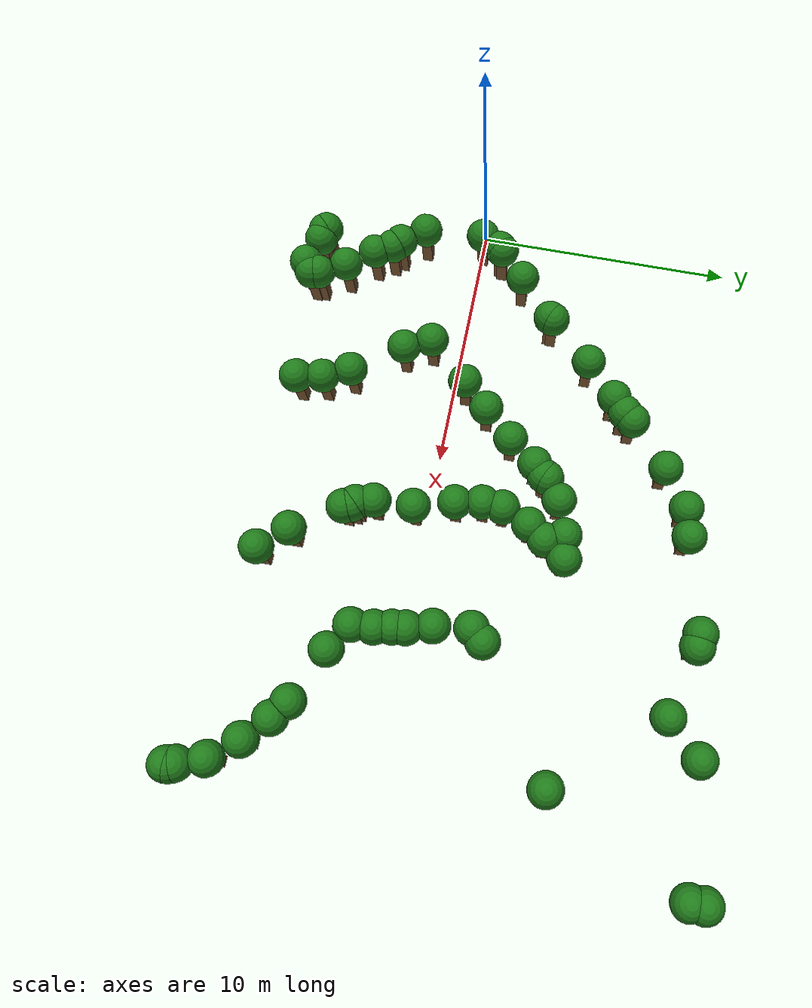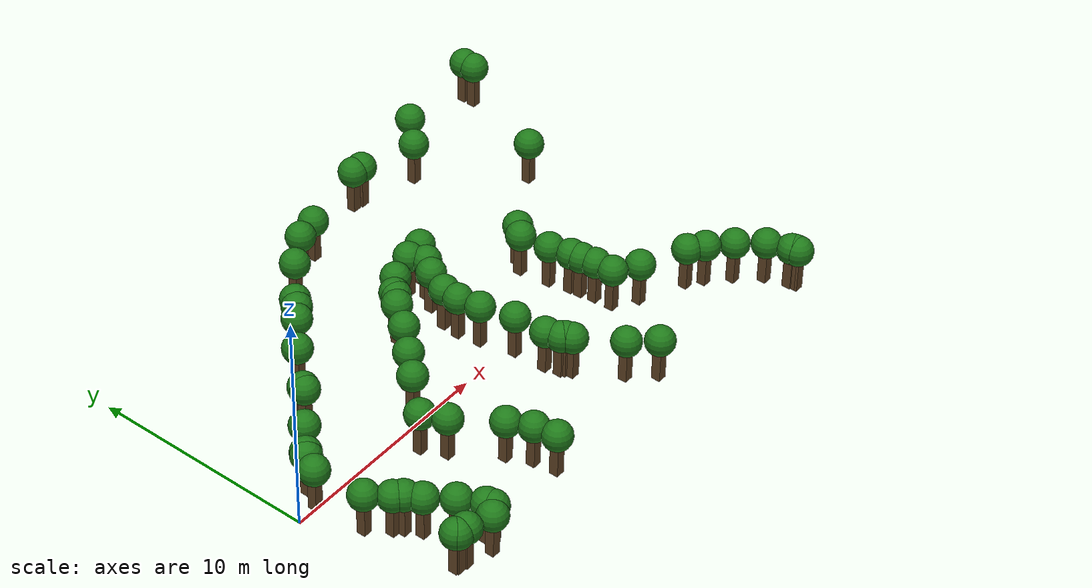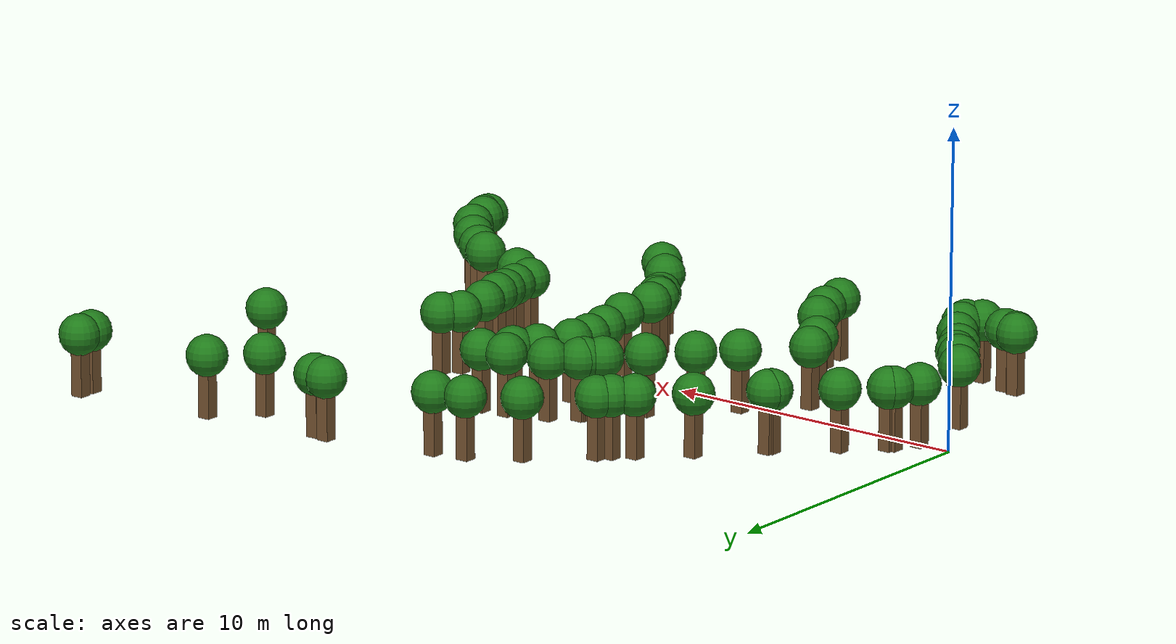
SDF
<sdf version="1.8">
 <model name="bush_trail_nav_walls">
  <static>true</static>
  <link name="trail_wall_141">
   <pose>24.194 11.701 0.750 0 0 0</pose>
   <collision name="c"><geometry><box><size>0.400 0.400 1.500</size></box></geometry></collision>
   <visual name="v">
    <geometry><box><size>0.400 0.400 1.500</size></box></geometry>
    <material><ambient>0.35 0.25 0.15 1</ambient><diffuse>0.45 0.32 0.18 1</diffuse></material>
   </visual>
   <visual name="leaves">
    <pose>0 0 1.200 0 0 0</pose>
    <geometry><sphere><radius>0.650</radius></sphere></geometry>
    <material><ambient>0.08 0.35 0.08 1</ambient><diffuse>0.12 0.48 0.10 1</diffuse></material>
   </visual>
  </link>
  <link name="trail_wall_145">
   <pose>24.194 11.173 0.750 0 0 0</pose>
   <collision name="c"><geometry><box><size>0.400 0.400 1.500</size></box></geometry></collision>
   <visual name="v">
    <geometry><box><size>0.400 0.400 1.500</size></box></geometry>
    <material><ambient>0.35 0.25 0.15 1</ambient><diffuse>0.45 0.32 0.18 1</diffuse></material>
   </visual>
   <visual name="leaves">
    <pose>0 0 1.200 0 0 0</pose>
    <geometry><sphere><radius>0.650</radius></sphere></geometry>
    <material><ambient>0.08 0.35 0.08 1</ambient><diffuse>0.12 0.48 0.10 1</diffuse></material>
   </visual>
  </link>
  <link name="trail_wall_146">
   <pose>19.677 10.997 0.750 0 0 0</pose>
   <collision name="c"><geometry><box><size>0.400 0.400 1.500</size></box></geometry></collision>
   <visual name="v">
    <geometry><box><size>0.400 0.400 1.500</size></box></geometry>
    <material><ambient>0.35 0.25 0.15 1</ambient><diffuse>0.45 0.32 0.18 1</diffuse></material>
   </visual>
   <visual name="leaves">
    <pose>0 0 1.200 0 0 0</pose>
    <geometry><sphere><radius>0.650</radius></sphere></geometry>
    <material><ambient>0.08 0.35 0.08 1</ambient><diffuse>0.12 0.48 0.10 1</diffuse></material>
   </visual>
  </link>
  <link name="trail_wall_149">
   <pose>15.396 10.528 0.750 0 0 0</pose>
   <collision name="c"><geometry><box><size>0.400 0.400 1.500</size></box></geometry></collision>
   <visual name="v">
    <geometry><box><size>0.400 0.400 1.500</size></box></geometry>
    <material><ambient>0.35 0.25 0.15 1</ambient><diffuse>0.45 0.32 0.18 1</diffuse></material>
   </visual>
   <visual name="leaves">
    <pose>0 0 1.200 0 0 0</pose>
    <geometry><sphere><radius>0.650</radius></sphere></geometry>
    <material><ambient>0.08 0.35 0.08 1</ambient><diffuse>0.12 0.48 0.10 1</diffuse></material>
   </visual>
  </link>
  <link name="trail_wall_150">
   <pose>15.865 10.469 0.750 0 0 0</pose>
   <collision name="c"><geometry><box><size>0.400 0.400 1.500</size></box></geometry></collision>
   <visual name="v">
    <geometry><box><size>0.400 0.400 1.500</size></box></geometry>
    <material><ambient>0.35 0.25 0.15 1</ambient><diffuse>0.45 0.32 0.18 1</diffuse></material>
   </visual>
   <visual name="leaves">
    <pose>0 0 1.200 0 0 0</pose>
    <geometry><sphere><radius>0.650</radius></sphere></geometry>
    <material><ambient>0.08 0.35 0.08 1</ambient><diffuse>0.12 0.48 0.10 1</diffuse></material>
   </visual>
  </link>
  <link name="trail_wall_162">
   <pose>18.446 9.765 0.750 0 0 0</pose>
   <collision name="c"><geometry><box><size>0.400 0.400 1.500</size></box></geometry></collision>
   <visual name="v">
    <geometry><box><size>0.400 0.400 1.500</size></box></geometry>
    <material><ambient>0.35 0.25 0.15 1</ambient><diffuse>0.45 0.32 0.18 1</diffuse></material>
   </visual>
   <visual name="leaves">
    <pose>0 0 1.200 0 0 0</pose>
    <geometry><sphere><radius>0.650</radius></sphere></geometry>
    <material><ambient>0.08 0.35 0.08 1</ambient><diffuse>0.12 0.48 0.10 1</diffuse></material>
   </visual>
  </link>
  <link name="trail_wall_163">
   <pose>11.935 9.707 0.750 0 0 0</pose>
   <collision name="c"><geometry><box><size>0.400 0.400 1.500</size></box></geometry></collision>
   <visual name="v">
    <geometry><box><size>0.400 0.400 1.500</size></box></geometry>
    <material><ambient>0.35 0.25 0.15 1</ambient><diffuse>0.45 0.32 0.18 1</diffuse></material>
   </visual>
   <visual name="leaves">
    <pose>0 0 1.200 0 0 0</pose>
    <geometry><sphere><radius>0.650</radius></sphere></geometry>
    <material><ambient>0.08 0.35 0.08 1</ambient><diffuse>0.12 0.48 0.10 1</diffuse></material>
   </visual>
  </link>
  <link name="trail_wall_168">
   <pose>10.880 9.472 0.750 0 0 0</pose>
   <collision name="c"><geometry><box><size>0.400 0.400 1.500</size></box></geometry></collision>
   <visual name="v">
    <geometry><box><size>0.400 0.400 1.500</size></box></geometry>
    <material><ambient>0.35 0.25 0.15 1</ambient><diffuse>0.45 0.32 0.18 1</diffuse></material>
   </visual>
   <visual name="leaves">
    <pose>0 0 1.200 0 0 0</pose>
    <geometry><sphere><radius>0.650</radius></sphere></geometry>
    <material><ambient>0.08 0.35 0.08 1</ambient><diffuse>0.12 0.48 0.10 1</diffuse></material>
   </visual>
  </link>
  <link name="trail_wall_177">
   <pose>9.472 8.534 0.750 0 0 0</pose>
   <collision name="c"><geometry><box><size>0.400 0.400 1.500</size></box></geometry></collision>
   <visual name="v">
    <geometry><box><size>0.400 0.400 1.500</size></box></geometry>
    <material><ambient>0.35 0.25 0.15 1</ambient><diffuse>0.45 0.32 0.18 1</diffuse></material>
   </visual>
   <visual name="leaves">
    <pose>0 0 1.200 0 0 0</pose>
    <geometry><sphere><radius>0.650</radius></sphere></geometry>
    <material><ambient>0.08 0.35 0.08 1</ambient><diffuse>0.12 0.48 0.10 1</diffuse></material>
   </visual>
  </link>
  <link name="trail_wall_184">
   <pose>7.830 7.067 0.750 0 0 0</pose>
   <collision name="c"><geometry><box><size>0.400 0.400 1.500</size></box></geometry></collision>
   <visual name="v">
    <geometry><box><size>0.400 0.400 1.500</size></box></geometry>
    <material><ambient>0.35 0.25 0.15 1</ambient><diffuse>0.45 0.32 0.18 1</diffuse></material>
   </visual>
   <visual name="leaves">
    <pose>0 0 1.200 0 0 0</pose>
    <geometry><sphere><radius>0.650</radius></sphere></geometry>
    <material><ambient>0.08 0.35 0.08 1</ambient><diffuse>0.12 0.48 0.10 1</diffuse></material>
   </visual>
  </link>
  <link name="trail_wall_188">
   <pose>7.537 6.716 0.750 0 0 0</pose>
   <collision name="c"><geometry><box><size>0.400 0.400 1.500</size></box></geometry></collision>
   <visual name="v">
    <geometry><box><size>0.400 0.400 1.500</size></box></geometry>
    <material><ambient>0.35 0.25 0.15 1</ambient><diffuse>0.45 0.32 0.18 1</diffuse></material>
   </visual>
   <visual name="leaves">
    <pose>0 0 1.200 0 0 0</pose>
    <geometry><sphere><radius>0.650</radius></sphere></geometry>
    <material><ambient>0.08 0.35 0.08 1</ambient><diffuse>0.12 0.48 0.10 1</diffuse></material>
   </visual>
  </link>
  <link name="trail_wall_190">
   <pose>7.009 6.246 0.750 0 0 0</pose>
   <collision name="c"><geometry><box><size>0.400 0.400 1.500</size></box></geometry></collision>
   <visual name="v">
    <geometry><box><size>0.400 0.400 1.500</size></box></geometry>
    <material><ambient>0.35 0.25 0.15 1</ambient><diffuse>0.45 0.32 0.18 1</diffuse></material>
   </visual>
   <visual name="leaves">
    <pose>0 0 1.200 0 0 0</pose>
    <geometry><sphere><radius>0.650</radius></sphere></geometry>
    <material><ambient>0.08 0.35 0.08 1</ambient><diffuse>0.12 0.48 0.10 1</diffuse></material>
   </visual>
  </link>
  <link name="trail_wall_191">
   <pose>21.554 6.012 0.750 0 0 0</pose>
   <collision name="c"><geometry><box><size>0.400 0.400 1.500</size></box></geometry></collision>
   <visual name="v">
    <geometry><box><size>0.400 0.400 1.500</size></box></geometry>
    <material><ambient>0.35 0.25 0.15 1</ambient><diffuse>0.45 0.32 0.18 1</diffuse></material>
   </visual>
   <visual name="leaves">
    <pose>0 0 1.200 0 0 0</pose>
    <geometry><sphere><radius>0.650</radius></sphere></geometry>
    <material><ambient>0.08 0.35 0.08 1</ambient><diffuse>0.12 0.48 0.10 1</diffuse></material>
   </visual>
  </link>
  <link name="trail_wall_194">
   <pose>13.578 5.367 0.750 0 0 0</pose>
   <collision name="c"><geometry><box><size>0.400 0.400 1.500</size></box></geometry></collision>
   <visual name="v">
    <geometry><box><size>0.400 0.400 1.500</size></box></geometry>
    <material><ambient>0.35 0.25 0.15 1</ambient><diffuse>0.45 0.32 0.18 1</diffuse></material>
   </visual>
   <visual name="leaves">
    <pose>0 0 1.200 0 0 0</pose>
    <geometry><sphere><radius>0.650</radius></sphere></geometry>
    <material><ambient>0.08 0.35 0.08 1</ambient><diffuse>0.12 0.48 0.10 1</diffuse></material>
   </visual>
  </link>
  <link name="trail_wall_195">
   <pose>12.698 5.249 0.750 0 0 0</pose>
   <collision name="c"><geometry><box><size>0.400 0.400 1.500</size></box></geometry></collision>
   <visual name="v">
    <geometry><box><size>0.400 0.400 1.500</size></box></geometry>
    <material><ambient>0.35 0.25 0.15 1</ambient><diffuse>0.45 0.32 0.18 1</diffuse></material>
   </visual>
   <visual name="leaves">
    <pose>0 0 1.200 0 0 0</pose>
    <geometry><sphere><radius>0.650</radius></sphere></geometry>
    <material><ambient>0.08 0.35 0.08 1</ambient><diffuse>0.12 0.48 0.10 1</diffuse></material>
   </visual>
  </link>
  <link name="trail_wall_197">
   <pose>5.718 5.073 0.750 0 0 0</pose>
   <collision name="c"><geometry><box><size>0.400 0.400 1.500</size></box></geometry></collision>
   <visual name="v">
    <geometry><box><size>0.400 0.400 1.500</size></box></geometry>
    <material><ambient>0.35 0.25 0.15 1</ambient><diffuse>0.45 0.32 0.18 1</diffuse></material>
   </visual>
   <visual name="leaves">
    <pose>0 0 1.200 0 0 0</pose>
    <geometry><sphere><radius>0.650</radius></sphere></geometry>
    <material><ambient>0.08 0.35 0.08 1</ambient><diffuse>0.12 0.48 0.10 1</diffuse></material>
   </visual>
  </link>
  <link name="trail_wall_199">
   <pose>11.408 4.839 0.750 0 0 0</pose>
   <collision name="c"><geometry><box><size>0.400 0.400 1.500</size></box></geometry></collision>
   <visual name="v">
    <geometry><box><size>0.400 0.400 1.500</size></box></geometry>
    <material><ambient>0.35 0.25 0.15 1</ambient><diffuse>0.45 0.32 0.18 1</diffuse></material>
   </visual>
   <visual name="leaves">
    <pose>0 0 1.200 0 0 0</pose>
    <geometry><sphere><radius>0.650</radius></sphere></geometry>
    <material><ambient>0.08 0.35 0.08 1</ambient><diffuse>0.12 0.48 0.10 1</diffuse></material>
   </visual>
  </link>
  <link name="trail_wall_201">
   <pose>12.991 4.545 0.750 0 0 0</pose>
   <collision name="c"><geometry><box><size>0.400 0.400 1.500</size></box></geometry></collision>
   <visual name="v">
    <geometry><box><size>0.400 0.400 1.500</size></box></geometry>
    <material><ambient>0.35 0.25 0.15 1</ambient><diffuse>0.45 0.32 0.18 1</diffuse></material>
   </visual>
   <visual name="leaves">
    <pose>0 0 1.200 0 0 0</pose>
    <geometry><sphere><radius>0.650</radius></sphere></geometry>
    <material><ambient>0.08 0.35 0.08 1</ambient><diffuse>0.12 0.48 0.10 1</diffuse></material>
   </visual>
  </link>
  <link name="trail_wall_203">
   <pose>10.645 4.252 0.750 0 0 0</pose>
   <collision name="c"><geometry><box><size>0.400 0.400 1.500</size></box></geometry></collision>
   <visual name="v">
    <geometry><box><size>0.400 0.400 1.500</size></box></geometry>
    <material><ambient>0.35 0.25 0.15 1</ambient><diffuse>0.45 0.32 0.18 1</diffuse></material>
   </visual>
   <visual name="leaves">
    <pose>0 0 1.200 0 0 0</pose>
    <geometry><sphere><radius>0.650</radius></sphere></geometry>
    <material><ambient>0.08 0.35 0.08 1</ambient><diffuse>0.12 0.48 0.10 1</diffuse></material>
   </visual>
  </link>
  <link name="trail_wall_204">
   <pose>10.587 4.135 0.750 0 0 0</pose>
   <collision name="c"><geometry><box><size>0.400 0.400 1.500</size></box></geometry></collision>
   <visual name="v">
    <geometry><box><size>0.400 0.400 1.500</size></box></geometry>
    <material><ambient>0.35 0.25 0.15 1</ambient><diffuse>0.45 0.32 0.18 1</diffuse></material>
   </visual>
   <visual name="leaves">
    <pose>0 0 1.200 0 0 0</pose>
    <geometry><sphere><radius>0.650</radius></sphere></geometry>
    <material><ambient>0.08 0.35 0.08 1</ambient><diffuse>0.12 0.48 0.10 1</diffuse></material>
   </visual>
  </link>
  <link name="trail_wall_206">
   <pose>12.522 3.900 0.750 0 0 0</pose>
   <collision name="c"><geometry><box><size>0.400 0.400 1.500</size></box></geometry></collision>
   <visual name="v">
    <geometry><box><size>0.400 0.400 1.500</size></box></geometry>
    <material><ambient>0.35 0.25 0.15 1</ambient><diffuse>0.45 0.32 0.18 1</diffuse></material>
   </visual>
   <visual name="leaves">
    <pose>0 0 1.200 0 0 0</pose>
    <geometry><sphere><radius>0.650</radius></sphere></geometry>
    <material><ambient>0.08 0.35 0.08 1</ambient><diffuse>0.12 0.48 0.10 1</diffuse></material>
   </visual>
  </link>
  <link name="trail_wall_207">
   <pose>10.176 3.724 0.750 0 0 0</pose>
   <collision name="c"><geometry><box><size>0.400 0.400 1.500</size></box></geometry></collision>
   <visual name="v">
    <geometry><box><size>0.400 0.400 1.500</size></box></geometry>
    <material><ambient>0.35 0.25 0.15 1</ambient><diffuse>0.45 0.32 0.18 1</diffuse></material>
   </visual>
   <visual name="leaves">
    <pose>0 0 1.200 0 0 0</pose>
    <geometry><sphere><radius>0.650</radius></sphere></geometry>
    <material><ambient>0.08 0.35 0.08 1</ambient><diffuse>0.12 0.48 0.10 1</diffuse></material>
   </visual>
  </link>
  <link name="trail_wall_209">
   <pose>4.194 3.431 0.750 0 0 0</pose>
   <collision name="c"><geometry><box><size>0.400 0.400 1.500</size></box></geometry></collision>
   <visual name="v">
    <geometry><box><size>0.400 0.400 1.500</size></box></geometry>
    <material><ambient>0.35 0.25 0.15 1</ambient><diffuse>0.45 0.32 0.18 1</diffuse></material>
   </visual>
   <visual name="leaves">
    <pose>0 0 1.200 0 0 0</pose>
    <geometry><sphere><radius>0.650</radius></sphere></geometry>
    <material><ambient>0.08 0.35 0.08 1</ambient><diffuse>0.12 0.48 0.10 1</diffuse></material>
   </visual>
  </link>
  <link name="trail_wall_210">
   <pose>4.135 3.314 0.750 0 0 0</pose>
   <collision name="c"><geometry><box><size>0.400 0.400 1.500</size></box></geometry></collision>
   <visual name="v">
    <geometry><box><size>0.400 0.400 1.500</size></box></geometry>
    <material><ambient>0.35 0.25 0.15 1</ambient><diffuse>0.45 0.32 0.18 1</diffuse></material>
   </visual>
   <visual name="leaves">
    <pose>0 0 1.200 0 0 0</pose>
    <geometry><sphere><radius>0.650</radius></sphere></geometry>
    <material><ambient>0.08 0.35 0.08 1</ambient><diffuse>0.12 0.48 0.10 1</diffuse></material>
   </visual>
  </link>
  <link name="trail_wall_212">
   <pose>17.038 3.021 0.750 0 0 0</pose>
   <collision name="c"><geometry><box><size>0.400 0.400 1.500</size></box></geometry></collision>
   <visual name="v">
    <geometry><box><size>0.400 0.400 1.500</size></box></geometry>
    <material><ambient>0.35 0.25 0.15 1</ambient><diffuse>0.45 0.32 0.18 1</diffuse></material>
   </visual>
   <visual name="leaves">
    <pose>0 0 1.200 0 0 0</pose>
    <geometry><sphere><radius>0.650</radius></sphere></geometry>
    <material><ambient>0.08 0.35 0.08 1</ambient><diffuse>0.12 0.48 0.10 1</diffuse></material>
   </visual>
  </link>
  <link name="trail_wall_213">
   <pose>12.053 2.845 0.750 0 0 0</pose>
   <collision name="c"><geometry><box><size>0.400 0.400 1.500</size></box></geometry></collision>
   <visual name="v">
    <geometry><box><size>0.400 0.400 1.500</size></box></geometry>
    <material><ambient>0.35 0.25 0.15 1</ambient><diffuse>0.45 0.32 0.18 1</diffuse></material>
   </visual>
   <visual name="leaves">
    <pose>0 0 1.200 0 0 0</pose>
    <geometry><sphere><radius>0.650</radius></sphere></geometry>
    <material><ambient>0.08 0.35 0.08 1</ambient><diffuse>0.12 0.48 0.10 1</diffuse></material>
   </visual>
  </link>
  <link name="trail_wall_214">
   <pose>9.355 2.669 0.750 0 0 0</pose>
   <collision name="c"><geometry><box><size>0.400 0.400 1.500</size></box></geometry></collision>
   <visual name="v">
    <geometry><box><size>0.400 0.400 1.500</size></box></geometry>
    <material><ambient>0.35 0.25 0.15 1</ambient><diffuse>0.45 0.32 0.18 1</diffuse></material>
   </visual>
   <visual name="leaves">
    <pose>0 0 1.200 0 0 0</pose>
    <geometry><sphere><radius>0.650</radius></sphere></geometry>
    <material><ambient>0.08 0.35 0.08 1</ambient><diffuse>0.12 0.48 0.10 1</diffuse></material>
   </visual>
  </link>
  <link name="trail_wall_215">
   <pose>16.628 2.551 0.750 0 0 0</pose>
   <collision name="c"><geometry><box><size>0.400 0.400 1.500</size></box></geometry></collision>
   <visual name="v">
    <geometry><box><size>0.400 0.400 1.500</size></box></geometry>
    <material><ambient>0.35 0.25 0.15 1</ambient><diffuse>0.45 0.32 0.18 1</diffuse></material>
   </visual>
   <visual name="leaves">
    <pose>0 0 1.200 0 0 0</pose>
    <geometry><sphere><radius>0.650</radius></sphere></geometry>
    <material><ambient>0.08 0.35 0.08 1</ambient><diffuse>0.12 0.48 0.10 1</diffuse></material>
   </visual>
  </link>
  <link name="trail_wall_221">
   <pose>11.994 2.082 0.750 0 0 0</pose>
   <collision name="c"><geometry><box><size>0.400 0.400 1.500</size></box></geometry></collision>
   <visual name="v">
    <geometry><box><size>0.400 0.400 1.500</size></box></geometry>
    <material><ambient>0.35 0.25 0.15 1</ambient><diffuse>0.45 0.32 0.18 1</diffuse></material>
   </visual>
   <visual name="leaves">
    <pose>0 0 1.200 0 0 0</pose>
    <geometry><sphere><radius>0.650</radius></sphere></geometry>
    <material><ambient>0.08 0.35 0.08 1</ambient><diffuse>0.12 0.48 0.10 1</diffuse></material>
   </visual>
  </link>
  <link name="trail_wall_222">
   <pose>2.610 1.965 0.750 0 0 0</pose>
   <collision name="c"><geometry><box><size>0.400 0.400 1.500</size></box></geometry></collision>
   <visual name="v">
    <geometry><box><size>0.400 0.400 1.500</size></box></geometry>
    <material><ambient>0.35 0.25 0.15 1</ambient><diffuse>0.45 0.32 0.18 1</diffuse></material>
   </visual>
   <visual name="leaves">
    <pose>0 0 1.200 0 0 0</pose>
    <geometry><sphere><radius>0.650</radius></sphere></geometry>
    <material><ambient>0.08 0.35 0.08 1</ambient><diffuse>0.12 0.48 0.10 1</diffuse></material>
   </visual>
  </link>
  <link name="trail_wall_228">
   <pose>8.299 1.554 0.750 0 0 0</pose>
   <collision name="c"><geometry><box><size>0.400 0.400 1.500</size></box></geometry></collision>
   <visual name="v">
    <geometry><box><size>0.400 0.400 1.500</size></box></geometry>
    <material><ambient>0.35 0.25 0.15 1</ambient><diffuse>0.45 0.32 0.18 1</diffuse></material>
   </visual>
   <visual name="leaves">
    <pose>0 0 1.200 0 0 0</pose>
    <geometry><sphere><radius>0.650</radius></sphere></geometry>
    <material><ambient>0.08 0.35 0.08 1</ambient><diffuse>0.12 0.48 0.10 1</diffuse></material>
   </visual>
  </link>
  <link name="trail_wall_233">
   <pose>16.804 1.202 0.750 0 0 0</pose>
   <collision name="c"><geometry><box><size>0.400 0.400 1.500</size></box></geometry></collision>
   <visual name="v">
    <geometry><box><size>0.400 0.400 1.500</size></box></geometry>
    <material><ambient>0.35 0.25 0.15 1</ambient><diffuse>0.45 0.32 0.18 1</diffuse></material>
   </visual>
   <visual name="leaves">
    <pose>0 0 1.200 0 0 0</pose>
    <geometry><sphere><radius>0.650</radius></sphere></geometry>
    <material><ambient>0.08 0.35 0.08 1</ambient><diffuse>0.12 0.48 0.10 1</diffuse></material>
   </visual>
  </link>
  <link name="trail_wall_234">
   <pose>12.170 1.085 0.750 0 0 0</pose>
   <collision name="c"><geometry><box><size>0.400 0.400 1.500</size></box></geometry></collision>
   <visual name="v">
    <geometry><box><size>0.400 0.400 1.500</size></box></geometry>
    <material><ambient>0.35 0.25 0.15 1</ambient><diffuse>0.45 0.32 0.18 1</diffuse></material>
   </visual>
   <visual name="leaves">
    <pose>0 0 1.200 0 0 0</pose>
    <geometry><sphere><radius>0.650</radius></sphere></geometry>
    <material><ambient>0.08 0.35 0.08 1</ambient><diffuse>0.12 0.48 0.10 1</diffuse></material>
   </visual>
  </link>
  <link name="trail_wall_235">
   <pose>1.554 0.968 0.750 0 0 0</pose>
   <collision name="c"><geometry><box><size>0.400 0.400 1.500</size></box></geometry></collision>
   <visual name="v">
    <geometry><box><size>0.400 0.400 1.500</size></box></geometry>
    <material><ambient>0.35 0.25 0.15 1</ambient><diffuse>0.45 0.32 0.18 1</diffuse></material>
   </visual>
   <visual name="leaves">
    <pose>0 0 1.200 0 0 0</pose>
    <geometry><sphere><radius>0.650</radius></sphere></geometry>
    <material><ambient>0.08 0.35 0.08 1</ambient><diffuse>0.12 0.48 0.10 1</diffuse></material>
   </visual>
  </link>
  <link name="trail_wall_236">
   <pose>1.437 0.850 0.750 0 0 0</pose>
   <collision name="c"><geometry><box><size>0.400 0.400 1.500</size></box></geometry></collision>
   <visual name="v">
    <geometry><box><size>0.400 0.400 1.500</size></box></geometry>
    <material><ambient>0.35 0.25 0.15 1</ambient><diffuse>0.45 0.32 0.18 1</diffuse></material>
   </visual>
   <visual name="leaves">
    <pose>0 0 1.200 0 0 0</pose>
    <geometry><sphere><radius>0.650</radius></sphere></geometry>
    <material><ambient>0.08 0.35 0.08 1</ambient><diffuse>0.12 0.48 0.10 1</diffuse></material>
   </visual>
  </link>
  <link name="trail_wall_238">
   <pose>7.361 0.557 0.750 0 0 0</pose>
   <collision name="c"><geometry><box><size>0.400 0.400 1.500</size></box></geometry></collision>
   <visual name="v">
    <geometry><box><size>0.400 0.400 1.500</size></box></geometry>
    <material><ambient>0.35 0.25 0.15 1</ambient><diffuse>0.45 0.32 0.18 1</diffuse></material>
   </visual>
   <visual name="leaves">
    <pose>0 0 1.200 0 0 0</pose>
    <geometry><sphere><radius>0.650</radius></sphere></geometry>
    <material><ambient>0.08 0.35 0.08 1</ambient><diffuse>0.12 0.48 0.10 1</diffuse></material>
   </visual>
  </link>
  <link name="trail_wall_240">
   <pose>17.038 0.264 0.750 0 0 0</pose>
   <collision name="c"><geometry><box><size>0.400 0.400 1.500</size></box></geometry></collision>
   <visual name="v">
    <geometry><box><size>0.400 0.400 1.500</size></box></geometry>
    <material><ambient>0.35 0.25 0.15 1</ambient><diffuse>0.45 0.32 0.18 1</diffuse></material>
   </visual>
   <visual name="leaves">
    <pose>0 0 1.200 0 0 0</pose>
    <geometry><sphere><radius>0.650</radius></sphere></geometry>
    <material><ambient>0.08 0.35 0.08 1</ambient><diffuse>0.12 0.48 0.10 1</diffuse></material>
   </visual>
  </link>
  <link name="trail_wall_241">
   <pose>1.026 0.088 0.750 0 0 0</pose>
   <collision name="c"><geometry><box><size>0.400 0.400 1.500</size></box></geometry></collision>
   <visual name="v">
    <geometry><box><size>0.400 0.400 1.500</size></box></geometry>
    <material><ambient>0.35 0.25 0.15 1</ambient><diffuse>0.45 0.32 0.18 1</diffuse></material>
   </visual>
   <visual name="leaves">
    <pose>0 0 1.200 0 0 0</pose>
    <geometry><sphere><radius>0.650</radius></sphere></geometry>
    <material><ambient>0.08 0.35 0.08 1</ambient><diffuse>0.12 0.48 0.10 1</diffuse></material>
   </visual>
  </link>
  <link name="trail_wall_243">
   <pose>17.097 -0.205 0.750 0 0 0</pose>
   <collision name="c"><geometry><box><size>0.400 0.400 1.500</size></box></geometry></collision>
   <visual name="v">
    <geometry><box><size>0.400 0.400 1.500</size></box></geometry>
    <material><ambient>0.35 0.25 0.15 1</ambient><diffuse>0.45 0.32 0.18 1</diffuse></material>
   </visual>
   <visual name="leaves">
    <pose>0 0 1.200 0 0 0</pose>
    <geometry><sphere><radius>0.650</radius></sphere></geometry>
    <material><ambient>0.08 0.35 0.08 1</ambient><diffuse>0.12 0.48 0.10 1</diffuse></material>
   </visual>
  </link>
  <link name="trail_wall_244">
   <pose>12.581 -0.381 0.750 0 0 0</pose>
   <collision name="c"><geometry><box><size>0.400 0.400 1.500</size></box></geometry></collision>
   <visual name="v">
    <geometry><box><size>0.400 0.400 1.500</size></box></geometry>
    <material><ambient>0.35 0.25 0.15 1</ambient><diffuse>0.45 0.32 0.18 1</diffuse></material>
   </visual>
   <visual name="leaves">
    <pose>0 0 1.200 0 0 0</pose>
    <geometry><sphere><radius>0.650</radius></sphere></geometry>
    <material><ambient>0.08 0.35 0.08 1</ambient><diffuse>0.12 0.48 0.10 1</diffuse></material>
   </visual>
  </link>
  <link name="trail_wall_247">
   <pose>17.214 -0.850 0.750 0 0 0</pose>
   <collision name="c"><geometry><box><size>0.400 0.400 1.500</size></box></geometry></collision>
   <visual name="v">
    <geometry><box><size>0.400 0.400 1.500</size></box></geometry>
    <material><ambient>0.35 0.25 0.15 1</ambient><diffuse>0.45 0.32 0.18 1</diffuse></material>
   </visual>
   <visual name="leaves">
    <pose>0 0 1.200 0 0 0</pose>
    <geometry><sphere><radius>0.650</radius></sphere></geometry>
    <material><ambient>0.08 0.35 0.08 1</ambient><diffuse>0.12 0.48 0.10 1</diffuse></material>
   </visual>
  </link>
  <link name="trail_wall_248">
   <pose>5.894 -1.026 0.750 0 0 0</pose>
   <collision name="c"><geometry><box><size>0.400 0.400 1.500</size></box></geometry></collision>
   <visual name="v">
    <geometry><box><size>0.400 0.400 1.500</size></box></geometry>
    <material><ambient>0.35 0.25 0.15 1</ambient><diffuse>0.45 0.32 0.18 1</diffuse></material>
   </visual>
   <visual name="leaves">
    <pose>0 0 1.200 0 0 0</pose>
    <geometry><sphere><radius>0.650</radius></sphere></geometry>
    <material><ambient>0.08 0.35 0.08 1</ambient><diffuse>0.12 0.48 0.10 1</diffuse></material>
   </visual>
  </link>
  <link name="trail_wall_252">
   <pose>17.273 -1.672 0.750 0 0 0</pose>
   <collision name="c"><geometry><box><size>0.400 0.400 1.500</size></box></geometry></collision>
   <visual name="v">
    <geometry><box><size>0.400 0.400 1.500</size></box></geometry>
    <material><ambient>0.35 0.25 0.15 1</ambient><diffuse>0.45 0.32 0.18 1</diffuse></material>
   </visual>
   <visual name="leaves">
    <pose>0 0 1.200 0 0 0</pose>
    <geometry><sphere><radius>0.650</radius></sphere></geometry>
    <material><ambient>0.08 0.35 0.08 1</ambient><diffuse>0.12 0.48 0.10 1</diffuse></material>
   </visual>
  </link>
  <link name="trail_wall_253">
   <pose>12.639 -1.848 0.750 0 0 0</pose>
   <collision name="c"><geometry><box><size>0.400 0.400 1.500</size></box></geometry></collision>
   <visual name="v">
    <geometry><box><size>0.400 0.400 1.500</size></box></geometry>
    <material><ambient>0.35 0.25 0.15 1</ambient><diffuse>0.45 0.32 0.18 1</diffuse></material>
   </visual>
   <visual name="leaves">
    <pose>0 0 1.200 0 0 0</pose>
    <geometry><sphere><radius>0.650</radius></sphere></geometry>
    <material><ambient>0.08 0.35 0.08 1</ambient><diffuse>0.12 0.48 0.10 1</diffuse></material>
   </visual>
  </link>
  <link name="trail_wall_254">
   <pose>6.364 -2.023 0.750 0 0 0</pose>
   <collision name="c"><geometry><box><size>0.400 0.400 1.500</size></box></geometry></collision>
   <visual name="v">
    <geometry><box><size>0.400 0.400 1.500</size></box></geometry>
    <material><ambient>0.35 0.25 0.15 1</ambient><diffuse>0.45 0.32 0.18 1</diffuse></material>
   </visual>
   <visual name="leaves">
    <pose>0 0 1.200 0 0 0</pose>
    <geometry><sphere><radius>0.650</radius></sphere></geometry>
    <material><ambient>0.08 0.35 0.08 1</ambient><diffuse>0.12 0.48 0.10 1</diffuse></material>
   </visual>
  </link>
  <link name="trail_wall_255">
   <pose>1.202 -2.199 0.750 0 0 0</pose>
   <collision name="c"><geometry><box><size>0.400 0.400 1.500</size></box></geometry></collision>
   <visual name="v">
    <geometry><box><size>0.400 0.400 1.500</size></box></geometry>
    <material><ambient>0.35 0.25 0.15 1</ambient><diffuse>0.45 0.32 0.18 1</diffuse></material>
   </visual>
   <visual name="leaves">
    <pose>0 0 1.200 0 0 0</pose>
    <geometry><sphere><radius>0.650</radius></sphere></geometry>
    <material><ambient>0.08 0.35 0.08 1</ambient><diffuse>0.12 0.48 0.10 1</diffuse></material>
   </visual>
  </link>
  <link name="trail_wall_256">
   <pose>18.270 -2.317 0.750 0 0 0</pose>
   <collision name="c"><geometry><box><size>0.400 0.400 1.500</size></box></geometry></collision>
   <visual name="v">
    <geometry><box><size>0.400 0.400 1.500</size></box></geometry>
    <material><ambient>0.35 0.25 0.15 1</ambient><diffuse>0.45 0.32 0.18 1</diffuse></material>
   </visual>
   <visual name="leaves">
    <pose>0 0 1.200 0 0 0</pose>
    <geometry><sphere><radius>0.650</radius></sphere></geometry>
    <material><ambient>0.08 0.35 0.08 1</ambient><diffuse>0.12 0.48 0.10 1</diffuse></material>
   </visual>
  </link>
  <link name="trail_wall_258">
   <pose>12.815 -2.493 0.750 0 0 0</pose>
   <collision name="c"><geometry><box><size>0.400 0.400 1.500</size></box></geometry></collision>
   <visual name="v">
    <geometry><box><size>0.400 0.400 1.500</size></box></geometry>
    <material><ambient>0.35 0.25 0.15 1</ambient><diffuse>0.45 0.32 0.18 1</diffuse></material>
   </visual>
   <visual name="leaves">
    <pose>0 0 1.200 0 0 0</pose>
    <geometry><sphere><radius>0.650</radius></sphere></geometry>
    <material><ambient>0.08 0.35 0.08 1</ambient><diffuse>0.12 0.48 0.10 1</diffuse></material>
   </visual>
  </link>
  <link name="trail_wall_259">
   <pose>12.933 -2.610 0.750 0 0 0</pose>
   <collision name="c"><geometry><box><size>0.400 0.400 1.500</size></box></geometry></collision>
   <visual name="v">
    <geometry><box><size>0.400 0.400 1.500</size></box></geometry>
    <material><ambient>0.35 0.25 0.15 1</ambient><diffuse>0.45 0.32 0.18 1</diffuse></material>
   </visual>
   <visual name="leaves">
    <pose>0 0 1.200 0 0 0</pose>
    <geometry><sphere><radius>0.650</radius></sphere></geometry>
    <material><ambient>0.08 0.35 0.08 1</ambient><diffuse>0.12 0.48 0.10 1</diffuse></material>
   </visual>
  </link>
  <link name="trail_wall_261">
   <pose>13.050 -2.903 0.750 0 0 0</pose>
   <collision name="c"><geometry><box><size>0.400 0.400 1.500</size></box></geometry></collision>
   <visual name="v">
    <geometry><box><size>0.400 0.400 1.500</size></box></geometry>
    <material><ambient>0.35 0.25 0.15 1</ambient><diffuse>0.45 0.32 0.18 1</diffuse></material>
   </visual>
   <visual name="leaves">
    <pose>0 0 1.200 0 0 0</pose>
    <geometry><sphere><radius>0.650</radius></sphere></geometry>
    <material><ambient>0.08 0.35 0.08 1</ambient><diffuse>0.12 0.48 0.10 1</diffuse></material>
   </visual>
  </link>
  <link name="trail_wall_262">
   <pose>1.848 -3.079 0.750 0 0 0</pose>
   <collision name="c"><geometry><box><size>0.400 0.400 1.500</size></box></geometry></collision>
   <visual name="v">
    <geometry><box><size>0.400 0.400 1.500</size></box></geometry>
    <material><ambient>0.35 0.25 0.15 1</ambient><diffuse>0.45 0.32 0.18 1</diffuse></material>
   </visual>
   <visual name="leaves">
    <pose>0 0 1.200 0 0 0</pose>
    <geometry><sphere><radius>0.650</radius></sphere></geometry>
    <material><ambient>0.08 0.35 0.08 1</ambient><diffuse>0.12 0.48 0.10 1</diffuse></material>
   </visual>
  </link>
  <link name="trail_wall_263">
   <pose>20.264 -3.196 0.750 0 0 0</pose>
   <collision name="c"><geometry><box><size>0.400 0.400 1.500</size></box></geometry></collision>
   <visual name="v">
    <geometry><box><size>0.400 0.400 1.500</size></box></geometry>
    <material><ambient>0.35 0.25 0.15 1</ambient><diffuse>0.45 0.32 0.18 1</diffuse></material>
   </visual>
   <visual name="leaves">
    <pose>0 0 1.200 0 0 0</pose>
    <geometry><sphere><radius>0.650</radius></sphere></geometry>
    <material><ambient>0.08 0.35 0.08 1</ambient><diffuse>0.12 0.48 0.10 1</diffuse></material>
   </visual>
  </link>
  <link name="trail_wall_264">
   <pose>2.141 -3.372 0.750 0 0 0</pose>
   <collision name="c"><geometry><box><size>0.400 0.400 1.500</size></box></geometry></collision>
   <visual name="v">
    <geometry><box><size>0.400 0.400 1.500</size></box></geometry>
    <material><ambient>0.35 0.25 0.15 1</ambient><diffuse>0.45 0.32 0.18 1</diffuse></material>
   </visual>
   <visual name="leaves">
    <pose>0 0 1.200 0 0 0</pose>
    <geometry><sphere><radius>0.650</radius></sphere></geometry>
    <material><ambient>0.08 0.35 0.08 1</ambient><diffuse>0.12 0.48 0.10 1</diffuse></material>
   </visual>
  </link>
  <link name="trail_wall_266">
   <pose>20.909 -3.666 0.750 0 0 0</pose>
   <collision name="c"><geometry><box><size>0.400 0.400 1.500</size></box></geometry></collision>
   <visual name="v">
    <geometry><box><size>0.400 0.400 1.500</size></box></geometry>
    <material><ambient>0.35 0.25 0.15 1</ambient><diffuse>0.45 0.32 0.18 1</diffuse></material>
   </visual>
   <visual name="leaves">
    <pose>0 0 1.200 0 0 0</pose>
    <geometry><sphere><radius>0.650</radius></sphere></geometry>
    <material><ambient>0.08 0.35 0.08 1</ambient><diffuse>0.12 0.48 0.10 1</diffuse></material>
   </visual>
  </link>
  <link name="trail_wall_267">
   <pose>7.654 -3.842 0.750 0 0 0</pose>
   <collision name="c"><geometry><box><size>0.400 0.400 1.500</size></box></geometry></collision>
   <visual name="v">
    <geometry><box><size>0.400 0.400 1.500</size></box></geometry>
    <material><ambient>0.35 0.25 0.15 1</ambient><diffuse>0.45 0.32 0.18 1</diffuse></material>
   </visual>
   <visual name="leaves">
    <pose>0 0 1.200 0 0 0</pose>
    <geometry><sphere><radius>0.650</radius></sphere></geometry>
    <material><ambient>0.08 0.35 0.08 1</ambient><diffuse>0.12 0.48 0.10 1</diffuse></material>
   </visual>
  </link>
  <link name="trail_wall_268">
   <pose>2.493 -4.018 0.750 0 0 0</pose>
   <collision name="c"><geometry><box><size>0.400 0.400 1.500</size></box></geometry></collision>
   <visual name="v">
    <geometry><box><size>0.400 0.400 1.500</size></box></geometry>
    <material><ambient>0.35 0.25 0.15 1</ambient><diffuse>0.45 0.32 0.18 1</diffuse></material>
   </visual>
   <visual name="leaves">
    <pose>0 0 1.200 0 0 0</pose>
    <geometry><sphere><radius>0.650</radius></sphere></geometry>
    <material><ambient>0.08 0.35 0.08 1</ambient><diffuse>0.12 0.48 0.10 1</diffuse></material>
   </visual>
  </link>
  <link name="trail_wall_271">
   <pose>21.789 -4.487 0.750 0 0 0</pose>
   <collision name="c"><geometry><box><size>0.400 0.400 1.500</size></box></geometry></collision>
   <visual name="v">
    <geometry><box><size>0.400 0.400 1.500</size></box></geometry>
    <material><ambient>0.35 0.25 0.15 1</ambient><diffuse>0.45 0.32 0.18 1</diffuse></material>
   </visual>
   <visual name="leaves">
    <pose>0 0 1.200 0 0 0</pose>
    <geometry><sphere><radius>0.650</radius></sphere></geometry>
    <material><ambient>0.08 0.35 0.08 1</ambient><diffuse>0.12 0.48 0.10 1</diffuse></material>
   </visual>
  </link>
  <link name="trail_wall_272">
   <pose>14.223 -4.663 0.750 0 0 0</pose>
   <collision name="c"><geometry><box><size>0.400 0.400 1.500</size></box></geometry></collision>
   <visual name="v">
    <geometry><box><size>0.400 0.400 1.500</size></box></geometry>
    <material><ambient>0.35 0.25 0.15 1</ambient><diffuse>0.45 0.32 0.18 1</diffuse></material>
   </visual>
   <visual name="leaves">
    <pose>0 0 1.200 0 0 0</pose>
    <geometry><sphere><radius>0.650</radius></sphere></geometry>
    <material><ambient>0.08 0.35 0.08 1</ambient><diffuse>0.12 0.48 0.10 1</diffuse></material>
   </visual>
  </link>
  <link name="trail_wall_273">
   <pose>8.123 -4.839 0.750 0 0 0</pose>
   <collision name="c"><geometry><box><size>0.400 0.400 1.500</size></box></geometry></collision>
   <visual name="v">
    <geometry><box><size>0.400 0.400 1.500</size></box></geometry>
    <material><ambient>0.35 0.25 0.15 1</ambient><diffuse>0.45 0.32 0.18 1</diffuse></material>
   </visual>
   <visual name="leaves">
    <pose>0 0 1.200 0 0 0</pose>
    <geometry><sphere><radius>0.650</radius></sphere></geometry>
    <material><ambient>0.08 0.35 0.08 1</ambient><diffuse>0.12 0.48 0.10 1</diffuse></material>
   </visual>
  </link>
  <link name="trail_wall_274">
   <pose>3.255 -5.015 0.750 0 0 0</pose>
   <collision name="c"><geometry><box><size>0.400 0.400 1.500</size></box></geometry></collision>
   <visual name="v">
    <geometry><box><size>0.400 0.400 1.500</size></box></geometry>
    <material><ambient>0.35 0.25 0.15 1</ambient><diffuse>0.45 0.32 0.18 1</diffuse></material>
   </visual>
   <visual name="leaves">
    <pose>0 0 1.200 0 0 0</pose>
    <geometry><sphere><radius>0.650</radius></sphere></geometry>
    <material><ambient>0.08 0.35 0.08 1</ambient><diffuse>0.12 0.48 0.10 1</diffuse></material>
   </visual>
  </link>
  <link name="trail_wall_277">
   <pose>22.610 -5.484 0.750 0 0 0</pose>
   <collision name="c"><geometry><box><size>0.400 0.400 1.500</size></box></geometry></collision>
   <visual name="v">
    <geometry><box><size>0.400 0.400 1.500</size></box></geometry>
    <material><ambient>0.35 0.25 0.15 1</ambient><diffuse>0.45 0.32 0.18 1</diffuse></material>
   </visual>
   <visual name="leaves">
    <pose>0 0 1.200 0 0 0</pose>
    <geometry><sphere><radius>0.650</radius></sphere></geometry>
    <material><ambient>0.08 0.35 0.08 1</ambient><diffuse>0.12 0.48 0.10 1</diffuse></material>
   </visual>
  </link>
  <link name="trail_wall_278">
   <pose>15.103 -5.660 0.750 0 0 0</pose>
   <collision name="c"><geometry><box><size>0.400 0.400 1.500</size></box></geometry></collision>
   <visual name="v">
    <geometry><box><size>0.400 0.400 1.500</size></box></geometry>
    <material><ambient>0.35 0.25 0.15 1</ambient><diffuse>0.45 0.32 0.18 1</diffuse></material>
   </visual>
   <visual name="leaves">
    <pose>0 0 1.200 0 0 0</pose>
    <geometry><sphere><radius>0.650</radius></sphere></geometry>
    <material><ambient>0.08 0.35 0.08 1</ambient><diffuse>0.12 0.48 0.10 1</diffuse></material>
   </visual>
  </link>
  <link name="trail_wall_279">
   <pose>8.299 -5.836 0.750 0 0 0</pose>
   <collision name="c"><geometry><box><size>0.400 0.400 1.500</size></box></geometry></collision>
   <visual name="v">
    <geometry><box><size>0.400 0.400 1.500</size></box></geometry>
    <material><ambient>0.35 0.25 0.15 1</ambient><diffuse>0.45 0.32 0.18 1</diffuse></material>
   </visual>
   <visual name="leaves">
    <pose>0 0 1.200 0 0 0</pose>
    <geometry><sphere><radius>0.650</radius></sphere></geometry>
    <material><ambient>0.08 0.35 0.08 1</ambient><diffuse>0.12 0.48 0.10 1</diffuse></material>
   </visual>
  </link>
  <link name="trail_wall_280">
   <pose>3.783 -6.012 0.750 0 0 0</pose>
   <collision name="c"><geometry><box><size>0.400 0.400 1.500</size></box></geometry></collision>
   <visual name="v">
    <geometry><box><size>0.400 0.400 1.500</size></box></geometry>
    <material><ambient>0.35 0.25 0.15 1</ambient><diffuse>0.45 0.32 0.18 1</diffuse></material>
   </visual>
   <visual name="leaves">
    <pose>0 0 1.200 0 0 0</pose>
    <geometry><sphere><radius>0.650</radius></sphere></geometry>
    <material><ambient>0.08 0.35 0.08 1</ambient><diffuse>0.12 0.48 0.10 1</diffuse></material>
   </visual>
  </link>
  <link name="trail_wall_281">
   <pose>1.848 -6.129 0.750 0 0 0</pose>
   <collision name="c"><geometry><box><size>0.400 0.400 1.500</size></box></geometry></collision>
   <visual name="v">
    <geometry><box><size>0.400 0.400 1.500</size></box></geometry>
    <material><ambient>0.35 0.25 0.15 1</ambient><diffuse>0.45 0.32 0.18 1</diffuse></material>
   </visual>
   <visual name="leaves">
    <pose>0 0 1.200 0 0 0</pose>
    <geometry><sphere><radius>0.650</radius></sphere></geometry>
    <material><ambient>0.08 0.35 0.08 1</ambient><diffuse>0.12 0.48 0.10 1</diffuse></material>
   </visual>
  </link>
  <link name="trail_wall_282">
   <pose>1.906 -6.188 0.750 0 0 0</pose>
   <collision name="c"><geometry><box><size>0.400 0.400 1.500</size></box></geometry></collision>
   <visual name="v">
    <geometry><box><size>0.400 0.400 1.500</size></box></geometry>
    <material><ambient>0.35 0.25 0.15 1</ambient><diffuse>0.45 0.32 0.18 1</diffuse></material>
   </visual>
   <visual name="leaves">
    <pose>0 0 1.200 0 0 0</pose>
    <geometry><sphere><radius>0.650</radius></sphere></geometry>
    <material><ambient>0.08 0.35 0.08 1</ambient><diffuse>0.12 0.48 0.10 1</diffuse></material>
   </visual>
  </link>
  <link name="trail_wall_283">
   <pose>2.317 -6.246 0.750 0 0 0</pose>
   <collision name="c"><geometry><box><size>0.400 0.400 1.500</size></box></geometry></collision>
   <visual name="v">
    <geometry><box><size>0.400 0.400 1.500</size></box></geometry>
    <material><ambient>0.35 0.25 0.15 1</ambient><diffuse>0.45 0.32 0.18 1</diffuse></material>
   </visual>
   <visual name="leaves">
    <pose>0 0 1.200 0 0 0</pose>
    <geometry><sphere><radius>0.650</radius></sphere></geometry>
    <material><ambient>0.08 0.35 0.08 1</ambient><diffuse>0.12 0.48 0.10 1</diffuse></material>
   </visual>
  </link>
  <link name="trail_wall_284">
   <pose>3.842 -6.305 0.750 0 0 0</pose>
   <collision name="c"><geometry><box><size>0.400 0.400 1.500</size></box></geometry></collision>
   <visual name="v">
    <geometry><box><size>0.400 0.400 1.500</size></box></geometry>
    <material><ambient>0.35 0.25 0.15 1</ambient><diffuse>0.45 0.32 0.18 1</diffuse></material>
   </visual>
   <visual name="leaves">
    <pose>0 0 1.200 0 0 0</pose>
    <geometry><sphere><radius>0.650</radius></sphere></geometry>
    <material><ambient>0.08 0.35 0.08 1</ambient><diffuse>0.12 0.48 0.10 1</diffuse></material>
   </visual>
  </link>
  <link name="trail_wall_286">
   <pose>22.962 -6.481 0.750 0 0 0</pose>
   <collision name="c"><geometry><box><size>0.400 0.400 1.500</size></box></geometry></collision>
   <visual name="v">
    <geometry><box><size>0.400 0.400 1.500</size></box></geometry>
    <material><ambient>0.35 0.25 0.15 1</ambient><diffuse>0.45 0.32 0.18 1</diffuse></material>
   </visual>
   <visual name="leaves">
    <pose>0 0 1.200 0 0 0</pose>
    <geometry><sphere><radius>0.650</radius></sphere></geometry>
    <material><ambient>0.08 0.35 0.08 1</ambient><diffuse>0.12 0.48 0.10 1</diffuse></material>
   </visual>
  </link>
  <link name="trail_wall_287">
   <pose>3.431 -6.598 0.750 0 0 0</pose>
   <collision name="c"><geometry><box><size>0.400 0.400 1.500</size></box></geometry></collision>
   <visual name="v">
    <geometry><box><size>0.400 0.400 1.500</size></box></geometry>
    <material><ambient>0.35 0.25 0.15 1</ambient><diffuse>0.45 0.32 0.18 1</diffuse></material>
   </visual>
   <visual name="leaves">
    <pose>0 0 1.200 0 0 0</pose>
    <geometry><sphere><radius>0.650</radius></sphere></geometry>
    <material><ambient>0.08 0.35 0.08 1</ambient><diffuse>0.12 0.48 0.10 1</diffuse></material>
   </visual>
  </link>
  <link name="trail_wall_288">
   <pose>23.021 -6.657 0.750 0 0 0</pose>
   <collision name="c"><geometry><box><size>0.400 0.400 1.500</size></box></geometry></collision>
   <visual name="v">
    <geometry><box><size>0.400 0.400 1.500</size></box></geometry>
    <material><ambient>0.35 0.25 0.15 1</ambient><diffuse>0.45 0.32 0.18 1</diffuse></material>
   </visual>
   <visual name="leaves">
    <pose>0 0 1.200 0 0 0</pose>
    <geometry><sphere><radius>0.650</radius></sphere></geometry>
    <material><ambient>0.08 0.35 0.08 1</ambient><diffuse>0.12 0.48 0.10 1</diffuse></material>
   </visual>
  </link>
  <link name="trail_wall_289">
   <pose>23.021 -6.774 0.750 0 0 0</pose>
   <collision name="c"><geometry><box><size>0.400 0.400 1.500</size></box></geometry></collision>
   <visual name="v">
    <geometry><box><size>0.400 0.400 1.500</size></box></geometry>
    <material><ambient>0.35 0.25 0.15 1</ambient><diffuse>0.45 0.32 0.18 1</diffuse></material>
   </visual>
   <visual name="leaves">
    <pose>0 0 1.200 0 0 0</pose>
    <geometry><sphere><radius>0.650</radius></sphere></geometry>
    <material><ambient>0.08 0.35 0.08 1</ambient><diffuse>0.12 0.48 0.10 1</diffuse></material>
   </visual>
  </link>
 </model>
</sdf>
